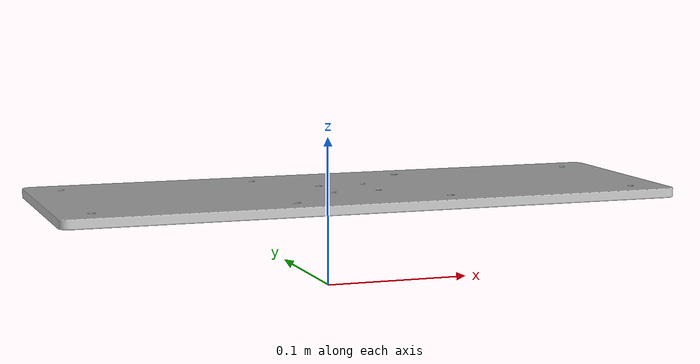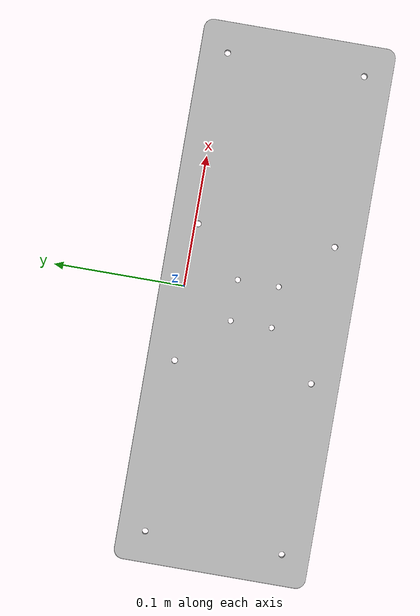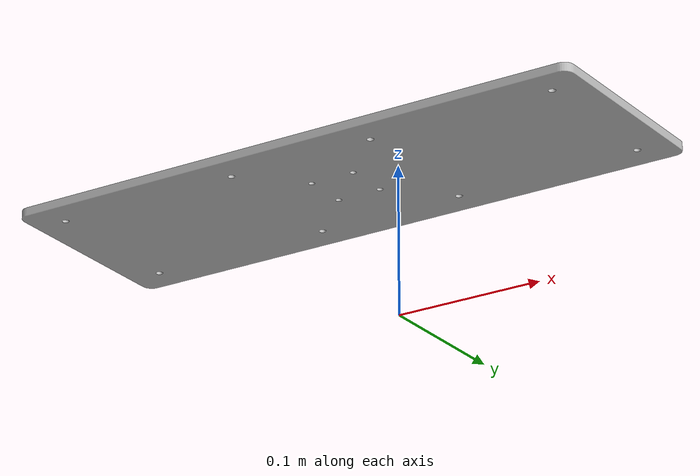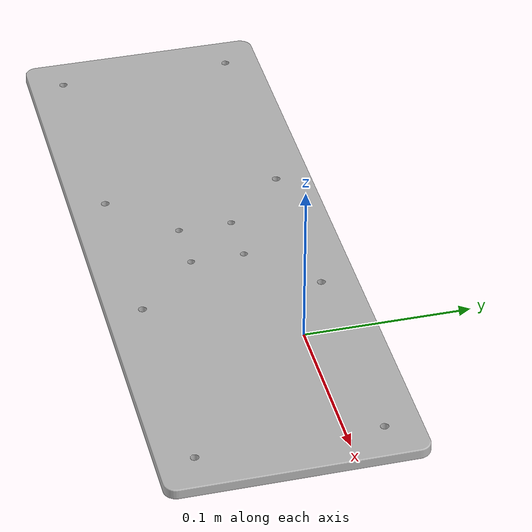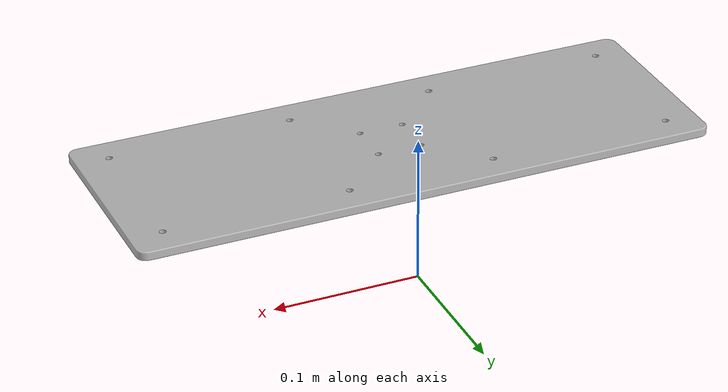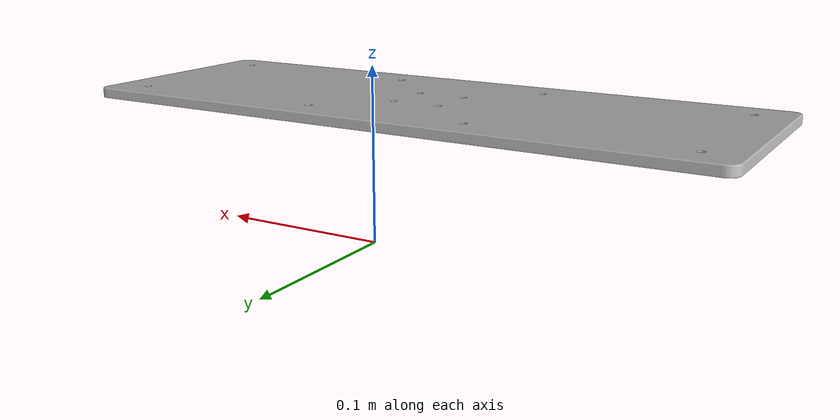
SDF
<?xml version="1.0"?>
<sdf version="1.10">
  <model name="omx_mounting_plate">
    <static>true</static>
    <link name="base_link">
      <inertial>
        <pose>-0.004000 -0.053000 0.070500 0 0 0</pose>
        <mass>1.2000</mass>
        <inertia>
          <ixx>0.00196360</ixx><ixy>0</ixy><ixz>0</ixz>
          <iyy>0.01560610</iyy><iyz>0</iyz>
          <izz>0.01756250</izz>
        </inertia>
      </inertial>
      <collision name="collision">
        <pose>-0.004000 -0.053000 0.070500 0 0 0</pose>
        <geometry>
          <box><size>0.395000 0.140000 0.006000</size></box>
        </geometry>
        <surface>
          <friction><ode><mu>0.9</mu><mu2>0.9</mu2></ode></friction>
        </surface>
      </collision>
      <visual name="visual">
        <geometry>
          <mesh><uri>model://omx_mounting_plate/meshes/omx_mounting_plate.obj</uri></mesh>
        </geometry>
      </visual>
    </link>
  </model>
</sdf>
